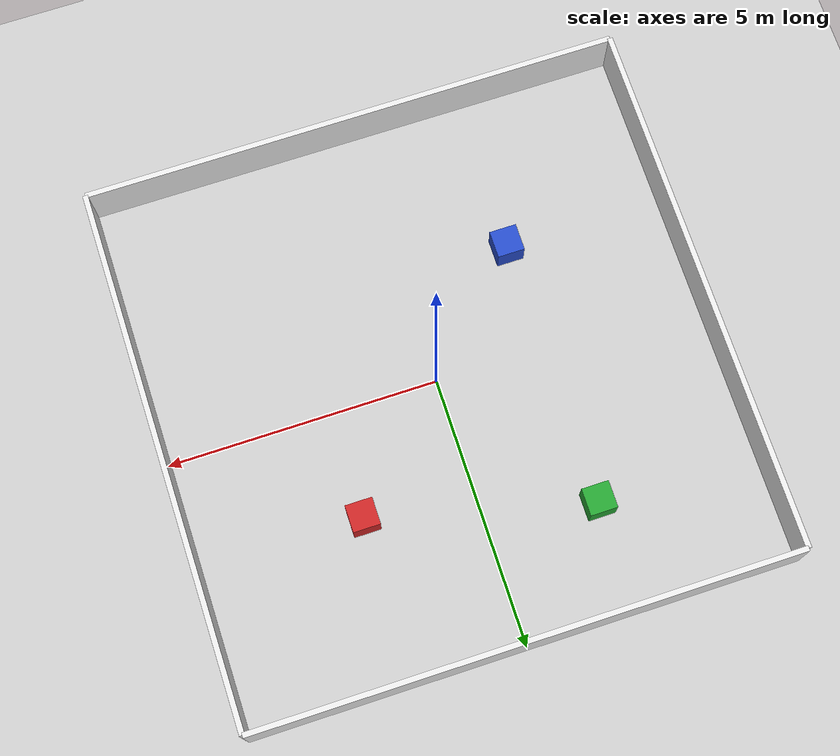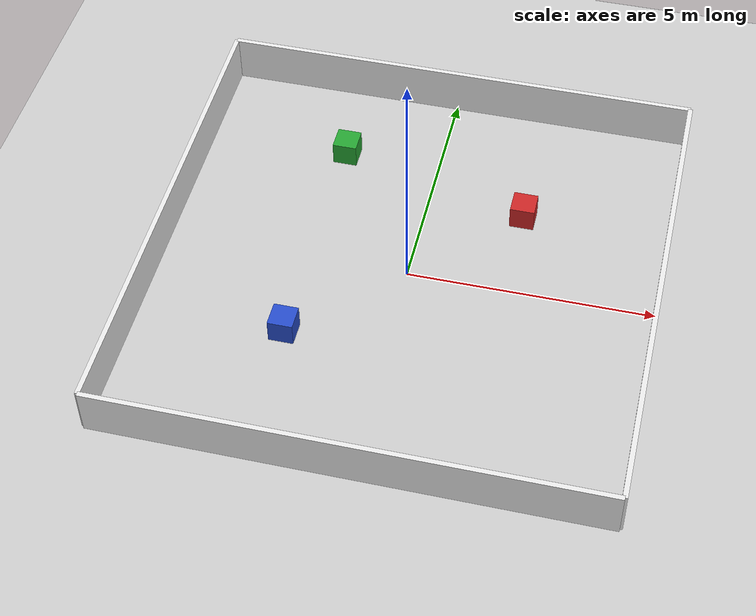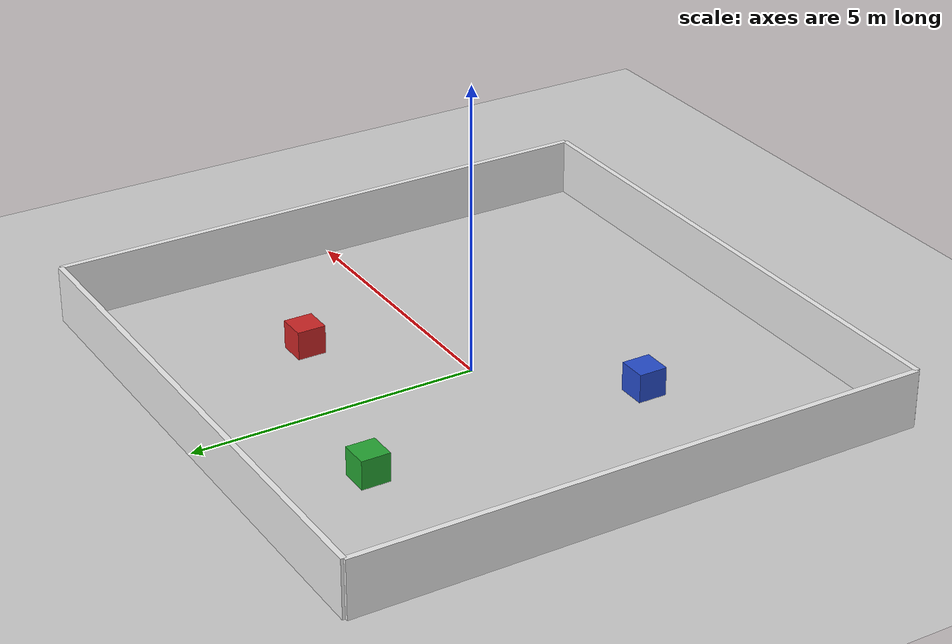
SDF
<?xml version="1.0"?>
<sdf version="1.6">
  <world name="test_room">

    <!-- Physics -->
    <physics type="ode">
      <real_time_update_rate>1000.0</real_time_update_rate>
      <max_step_size>0.001</max_step_size>
      <real_time_factor>1</real_time_factor>
    </physics>

    <!-- Lighting -->
    <light name="sun" type="directional">
      <cast_shadows>true</cast_shadows>
      <pose>0 0 10 0 0 0</pose>
      <diffuse>0.8 0.8 0.8 1</diffuse>
      <specular>0.2 0.2 0.2 1</specular>
      <direction>-0.5 0.1 -0.9</direction>
    </light>

    <!-- Ground Plane -->
    <model name="ground_plane">
      <static>true</static>
      <link name="link">
        <collision name="collision">
          <geometry>
            <plane>
              <normal>0 0 1</normal>
              <size>100 100</size>
            </plane>
          </geometry>
          <surface>
            <friction>
              <ode>
                <mu>100</mu>
                <mu2>50</mu2>
              </ode>
            </friction>
          </surface>
        </collision>
        <visual name="visual">
          <cast_shadows>false</cast_shadows>
          <geometry>
            <plane>
              <normal>0 0 1</normal>
              <size>100 100</size>
            </plane>
          </geometry>
          <material>
            <script>
              <uri>file://media/materials/scripts/gazebo.material</uri>
              <name>Gazebo/Grey</name>
            </script>
          </material>
        </visual>
      </link>
    </model>

    <!-- Room Walls (10m x 10m room) -->
    <!-- North Wall -->
    <model name="wall_north">
      <static>true</static>
      <pose>0 5 0.5 0 0 0</pose>
      <link name="link">
        <collision name="collision">
          <geometry>
            <box><size>10 0.1 1</size></box>
          </geometry>
        </collision>
        <visual name="visual">
          <geometry>
            <box><size>10 0.1 1</size></box>
          </geometry>
          <material>
            <script>
              <uri>file://media/materials/scripts/gazebo.material</uri>
              <name>Gazebo/White</name>
            </script>
          </material>
        </visual>
      </link>
    </model>

    <!-- South Wall -->
    <model name="wall_south">
      <static>true</static>
      <pose>0 -5 0.5 0 0 0</pose>
      <link name="link">
        <collision name="collision">
          <geometry>
            <box><size>10 0.1 1</size></box>
          </geometry>
        </collision>
        <visual name="visual">
          <geometry>
            <box><size>10 0.1 1</size></box>
          </geometry>
          <material>
            <script>
              <uri>file://media/materials/scripts/gazebo.material</uri>
              <name>Gazebo/White</name>
            </script>
          </material>
        </visual>
      </link>
    </model>

    <!-- East Wall -->
    <model name="wall_east">
      <static>true</static>
      <pose>5 0 0.5 0 0 0</pose>
      <link name="link">
        <collision name="collision">
          <geometry>
            <box><size>0.1 10 1</size></box>
          </geometry>
        </collision>
        <visual name="visual">
          <geometry>
            <box><size>0.1 10 1</size></box>
          </geometry>
          <material>
            <script>
              <uri>file://media/materials/scripts/gazebo.material</uri>
              <name>Gazebo/White</name>
            </script>
          </material>
        </visual>
      </link>
    </model>

    <!-- West Wall -->
    <model name="wall_west">
      <static>true</static>
      <pose>-5 0 0.5 0 0 0</pose>
      <link name="link">
        <collision name="collision">
          <geometry>
            <box><size>0.1 10 1</size></box>
          </geometry>
        </collision>
        <visual name="visual">
          <geometry>
            <box><size>0.1 10 1</size></box>
          </geometry>
          <material>
            <script>
              <uri>file://media/materials/scripts/gazebo.material</uri>
              <name>Gazebo/White</name>
            </script>
          </material>
        </visual>
      </link>
    </model>

    <!-- Some obstacles inside room -->
    <model name="box_obstacle_1">
      <static>true</static>
      <pose>2 2 0.25 0 0 0</pose>
      <link name="link">
        <collision name="collision">
          <geometry>
            <box><size>0.5 0.5 0.5</size></box>
          </geometry>
        </collision>
        <visual name="visual">
          <geometry>
            <box><size>0.5 0.5 0.5</size></box>
          </geometry>
          <material>
            <script>
              <uri>file://media/materials/scripts/gazebo.material</uri>
              <name>Gazebo/Red</name>
            </script>
          </material>
        </visual>
      </link>
    </model>

    <model name="box_obstacle_2">
      <static>true</static>
      <pose>-2 -2 0.25 0 0 0</pose>
      <link name="link">
        <collision name="collision">
          <geometry>
            <box><size>0.5 0.5 0.5</size></box>
          </geometry>
        </collision>
        <visual name="visual">
          <geometry>
            <box><size>0.5 0.5 0.5</size></box>
          </geometry>
          <material>
            <script>
              <uri>file://media/materials/scripts/gazebo.material</uri>
              <name>Gazebo/Blue</name>
            </script>
          </material>
        </visual>
      </link>
    </model>

    <model name="box_obstacle_3">
      <static>true</static>
      <pose>-2 3 0.25 0 0 0</pose>
      <link name="link">
        <collision name="collision">
          <geometry>
            <box><size>0.5 0.5 0.5</size></box>
          </geometry>
        </collision>
        <visual name="visual">
          <geometry>
            <box><size>0.5 0.5 0.5</size></box>
          </geometry>
          <material>
            <script>
              <uri>file://media/materials/scripts/gazebo.material</uri>
              <name>Gazebo/Green</name>
            </script>
          </material>
        </visual>
      </link>
    </model>

  </world>
</sdf>
